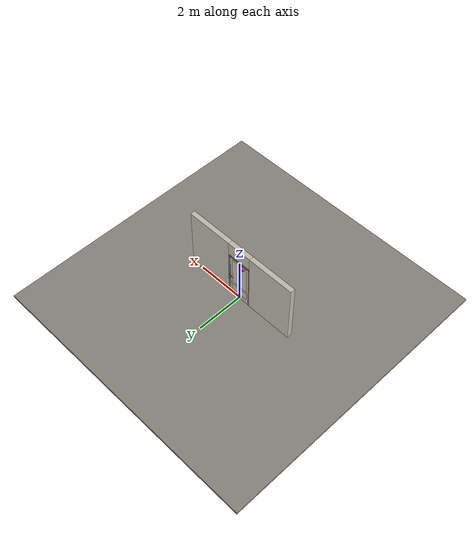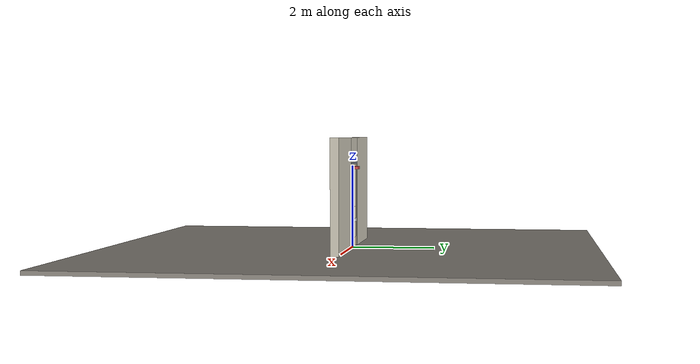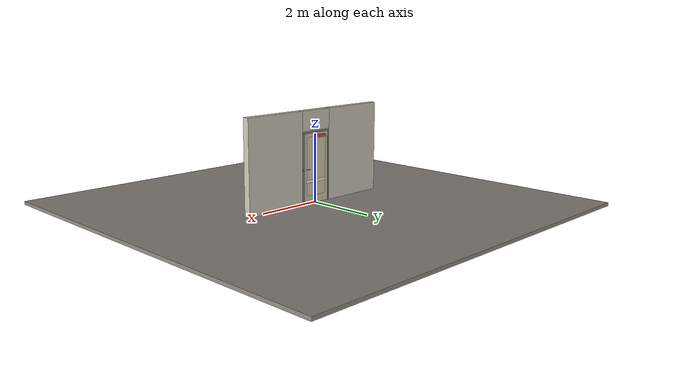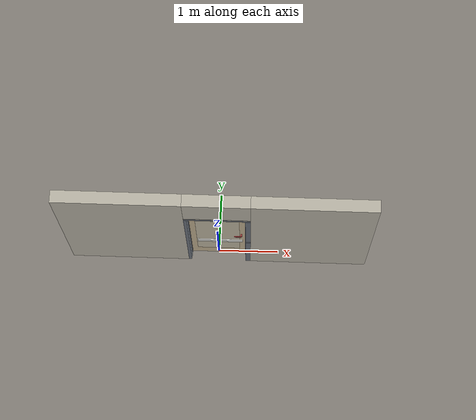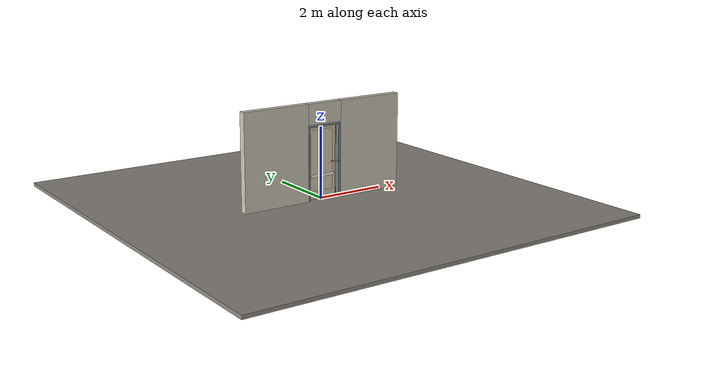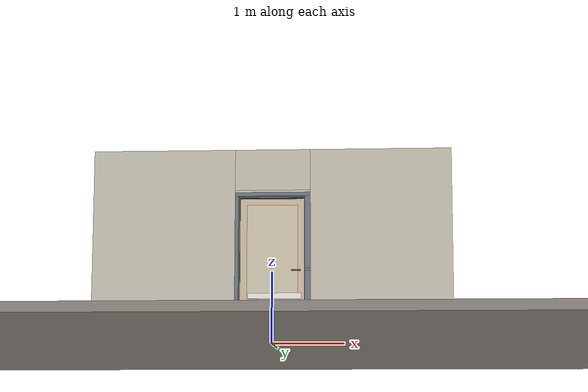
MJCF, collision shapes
<?xml version="1.0" ?>
<mujoco model="db0386_swing_single_simple">
  <compiler angle="radian" meshdir="../../hardware" texturedir="../../textures" autolimits="true" inertiafromgeom="false"/>
  <option timestep="0.002" integrator="implicitfast" cone="elliptic" impratio="10" noslip_iterations="3">
    <flag multiccd="enable"/>
  </option>
  <size memory="16M"/>
  <default>
    <geom condim="4" solref="0.005 1" solimp="0.95 0.99 0.001"/>
    <joint solreflimit="0.005 1" solimplimit="0.95 0.99 0.001"/>
    <tendon solreflimit="0.005 1"/>
    <equality solref="0.002 1"/>
  </default>
  <visual>
    <headlight ambient="0.4 0.4 0.4" diffuse="0.7 0.7 0.7" specular="0.2 0.2 0.2"/>
    <quality shadowsize="4096"/>
    <map znear="0.01" zfar="60"/>
  </visual>
  <asset>
    <mesh name="closer_body_fdc4667657" file="closer_body_fdc4667657.obj"/>
    <mesh name="hinge_e22b26c0c1" file="hinge_e22b26c0c1.obj"/>
    <mesh name="hinge_jamb_e1d088f8dc" file="hinge_jamb_e1d088f8dc.obj"/>
    <mesh name="lever_6268dcb28c" file="lever_6268dcb28c.obj"/>
    <material name="mat_floor" rgba="0.55 0.53 0.5 1" specular="0.2" shininess="0.15" reflectance="0"/>
    <material name="mat_wall" rgba="0.78 0.76 0.7 1" specular="0.2" shininess="0.1" reflectance="0"/>
    <material name="mat_leaf" rgba="0.82 0.75 0.62 1" specular="0.2" shininess="0.5" reflectance="0"/>
    <material name="mat_glass" rgba="0.85 0.92 0.95 0.25" specular="0.2" shininess="0.95" reflectance="0.1"/>
    <material name="mat_hinge" rgba="0.65 0.66 0.68 1" specular="0.74" shininess="0.5" reflectance="0.36"/>
    <material name="mat_op_stainless" rgba="0.75 0.76 0.77 1" specular="0.8" shininess="0.65" reflectance="0.4"/>
    <material name="mat_trim" rgba="0.85 0.66 0.3 1" specular="0.8" shininess="0.75" reflectance="0.4"/>
    <material name="mat_bolt" rgba="0.75 0.76 0.77 1" specular="0.8" shininess="0.65" reflectance="0.4"/>
    <material name="mat_frame" rgba="0.45 0.48 0.52 1" specular="0.32" shininess="0.6" reflectance="0.08"/>
    <material name="mat_seal" rgba="0.1 0.1 0.1 1" specular="0.2" shininess="0.1" reflectance="0"/>
    <material name="mat_closer" rgba="0.22 0.17 0.13 1" specular="0.8" shininess="0.6" reflectance="0.4"/>
    <material name="mat_bumper" rgba="0.92 0.92 0.9 1" specular="0.2" shininess="0.6" reflectance="0"/>
    <texture name="skybox" type="skybox" builtin="gradient" rgb1="0.6 0.7 0.85" rgb2="0.9 0.92 0.95" width="256" height="256"/>
  </asset>
  <worldbody>
    <light name="sun" pos="1.5 -2.5 4" dir="-0.3 0.5 -0.8" directional="true" diffuse="0.8 0.8 0.8" specular="0.3 0.3 0.3" castshadow="true"/>
    <light name="fill" pos="-1.5 2.5 3" dir="0.3 -0.5 -0.7" directional="true" diffuse="0.35 0.35 0.4" castshadow="false"/>
    <camera name="robot_view" pos="0 -2.613187 1.734312" xyaxes="1 0 0 0 0.26963 0.962964" fovy="52"/>
    <camera name="far_view" pos="0 2.471187 1.734312" xyaxes="-1 0 0 0 -0.26963 0.962964" fovy="52"/>
    <camera name="iso" pos="1.932062 -2.206438 2.141063" xyaxes="0.741536 0.670913 0 -0.242917 0.268487 0.932151" fovy="46"/>
    <camera name="detail_handle" pos="0.4705 -0.877 1.296" xyaxes="0.97561 0.219512 0 -0.070934 0.315262 0.94635" fovy="38"/>
    <geom name="floor" type="box" size="6 6 0.05" pos="0 0 -0.05" material="mat_floor" group="0" contype="1" conaffinity="1" friction="0.8 0.005 0.0001" density="2400"/>
    <geom name="wall_left" type="box" size="0.99475 0.1 1.35" pos="-1.50525 -0.071 1.35" material="mat_wall" group="0" contype="1" conaffinity="1" friction="0.6 0.005 0.0001" density="800"/>
    <geom name="wall_right" type="box" size="0.97975 0.1 1.35" pos="1.52025 -0.071 1.35" material="mat_wall" group="0" contype="1" conaffinity="1" friction="0.6 0.005 0.0001" density="800"/>
    <geom name="wall_header" type="box" size="0.5255 0.1 0.2875" pos="0.015 -0.071 2.4125" material="mat_wall" group="0" contype="1" conaffinity="1" friction="0.6 0.005 0.0001" density="800"/>
    <geom name="hinge_0_jamb" type="mesh" mesh="hinge_jamb_e1d088f8dc" pos="-0.4575 0.029 0.259" quat="0 1 0 0" material="mat_hinge" group="1" contype="0" conaffinity="0" density="7850"/>
    <geom name="hinge_1_jamb" type="mesh" mesh="hinge_jamb_e1d088f8dc" pos="-0.4575 0.029 1.025" quat="0 1 0 0" material="mat_hinge" group="1" contype="0" conaffinity="0" density="7850"/>
    <geom name="hinge_2_jamb" type="mesh" mesh="hinge_jamb_e1d088f8dc" pos="-0.4575 0.029 1.861" quat="0 1 0 0" material="mat_hinge" group="1" contype="0" conaffinity="0" density="7850"/>
    <geom name="jamb_hinge" type="box" size="0.025 0.1 1.0225" pos="-0.4855 -0.071 1.0225" material="mat_frame" group="0" contype="1" conaffinity="1" friction="0.6 0.005 0.0001" density="300"/>
    <geom name="strike_1016_wall_n" type="box" size="0.04 0.08075 0.018" pos="0.5005 -0.09025 1.016" material="mat_frame" group="0" contype="1" conaffinity="1" friction="0.6 0.005 0.0001" density="300"/>
    <geom name="strike_1016_wall_p" type="box" size="0.04 0.008 0.018" pos="0.5005 0.0175 1.016" material="mat_frame" group="0" contype="1" conaffinity="1" friction="0.6 0.005 0.0001" density="300"/>
    <geom name="strike_1016_ramp" type="box" size="0.04 0.018028 0.018" pos="0.503782 0.018312 1.016" quat="0.957092 0 0 -0.289784" material="mat_frame" group="0" contype="1" conaffinity="1" friction="0.12 0.005 0.0001" density="300"/>
    <geom name="strike_1016_back" type="box" size="0.0285 0.0095 0.018" pos="0.512 0 1.016" material="mat_frame" group="0" contype="1" conaffinity="1" friction="0.6 0.005 0.0001" density="300"/>
    <geom name="jamb_strike_0" type="box" size="0.04 0.1 0.499" pos="0.5005 -0.071 0.499" material="mat_frame" group="0" contype="1" conaffinity="1" friction="0.6 0.005 0.0001" density="300"/>
    <geom name="jamb_strike_1" type="box" size="0.04 0.1 0.5055" pos="0.5005 -0.071 1.5395" material="mat_frame" group="0" contype="1" conaffinity="1" friction="0.6 0.005 0.0001" density="300"/>
    <geom name="jamb_head" type="box" size="0.5255 0.1 0.025" pos="0.015 -0.071 2.07" material="mat_frame" group="0" contype="1" conaffinity="1" friction="0.6 0.005 0.0001" density="300"/>
    <geom name="head_stud" type="box" size="0.5255 0.1 0.015" pos="0.015 -0.071 2.11" material="mat_wall" group="0" contype="1" conaffinity="1" friction="0.6 0.005 0.0001" density="500"/>
    <geom name="stop_hinge" type="box" size="0.0055 0.016 1.0225" pos="-0.455 -0.0385 1.0225" material="mat_frame" group="0" contype="1" conaffinity="1" friction="0.6 0.005 0.0001" density="300"/>
    <geom name="stop_strike" type="box" size="0.0055 0.016 1.0225" pos="0.455 -0.0385 1.0225" material="mat_frame" group="0" contype="1" conaffinity="1" friction="0.6 0.005 0.0001" density="300"/>
    <geom name="stop_head" type="box" size="0.4605 0.016 0.0055" pos="0 -0.0385 2.0395" material="mat_frame" group="0" contype="1" conaffinity="1" friction="0.6 0.005 0.0001" density="300"/>
    <geom name="seal_hinge" type="box" size="0.004 0.002 1.0225" pos="-0.4575 -0.024 1.0225" material="mat_seal" group="1" contype="0" conaffinity="0" density="1100"/>
    <geom name="seal_strike" type="box" size="0.004 0.002 1.0225" pos="0.4575 -0.024 1.0225" material="mat_seal" group="1" contype="0" conaffinity="0" density="1100"/>
    <geom name="seal_head" type="box" size="0.4405 0.002 0.008" pos="0 -0.024 2.033" material="mat_seal" group="1" contype="0" conaffinity="0" density="1100"/>
    <site name="approach_point" pos="0 -1.5 0" quat="1 0 0 0" size="0.05" rgba="0.2 0.9 0.2 0.5" group="4"/>
    <site name="goal_point" pos="0 1.5 0" quat="1 0 0 0" size="0.05" rgba="0.2 0.9 0.2 0.5" group="4"/>
    <site name="door_plane_center" pos="0 0 1.0225" quat="1 0 0 0" size="0.02" rgba="0.2 0.9 0.2 0.5" group="4"/>
    <body name="leaf" pos="-0.4605 0 0">
      <inertial pos="0.390233 0.029019 1.366249" mass="43.537443" quat="-0.458623 0.490618 0.527344 0.52045" diaginertia="2.112221342 18.431866581 20.454677404"/>
      <joint name="leaf_hinge" type="hinge" axis="0 0 1" pos="0.003 0.029 0" limited="true" range="0 1.570796" solreflimit="0.02 1" damping="12.25611" frictionloss="0.599015" stiffness="10.536057" springref="-2.220945" armature="0.02"/>
      <geom name="leaf_slab" type="box" size="0.457 0.022 1.016" pos="0.46 0 1.025" material="mat_leaf" group="0" contype="1" conaffinity="1" friction="0.4 0.005 0.0001" density="1"/>
      <geom name="leaf_glass_0" type="box" size="0.35646 0.0228 0.85344" pos="0.46 0 1.08596" material="mat_glass" group="1" contype="0" conaffinity="0" density="1"/>
      <geom name="hinge_0" type="mesh" mesh="hinge_e22b26c0c1" pos="0.003 0.029 0.259" quat="0 1 0 0" material="mat_hinge" group="1" contype="0" conaffinity="0" density="7850"/>
      <geom name="hinge_1" type="mesh" mesh="hinge_e22b26c0c1" pos="0.003 0.029 1.025" quat="0 1 0 0" material="mat_hinge" group="1" contype="0" conaffinity="0" density="7850"/>
      <geom name="hinge_2" type="mesh" mesh="hinge_e22b26c0c1" pos="0.003 0.029 1.861" quat="0 1 0 0" material="mat_hinge" group="1" contype="0" conaffinity="0" density="7850"/>
      <geom name="leaf_latch_bolt_faceplate" type="box" size="0.0006 0.014 0.028" pos="0.9164 0 1.016" material="mat_bolt" group="1" contype="0" conaffinity="0" density="8500"/>
      <geom name="closer_body" type="mesh" mesh="closer_body_fdc4667657" pos="0.3 0.022 1.952" quat="-0.707107 0.707107 0 0" material="mat_closer" group="1" contype="0" conaffinity="0" density="2000"/>
      <geom name="closer_body_col" type="box" size="0.145 0.05 0.035" pos="0.3 0.072 1.952" material="mat_closer" group="3" contype="1" conaffinity="1" rgba="0.8 0.3 0.3 0.25" friction="0.6 0.005 0.0001" density="2000"/>
      <geom name="bumper_rail_n" type="box" size="0.372 0.01 0.04" pos="0.495 -0.032 0.659" material="mat_bumper" group="0" contype="1" conaffinity="1" friction="0.6 0.005 0.0001" density="1200"/>
      <geom name="bumper_rail_p" type="box" size="0.372 0.01 0.04" pos="0.495 0.032 0.659" material="mat_bumper" group="0" contype="1" conaffinity="1" friction="0.6 0.005 0.0001" density="1200"/>
      <site name="leaf_edge_mid" pos="0.917 0 1.016" quat="1 0 0 0" size="0.02" rgba="0.2 0.9 0.2 0.5" group="4"/>
      <body name="leaf_handle" pos="0.847 0 1.016">
        <inertial pos="-0.03705 0 0" mass="0.984967" quat="0 0.707107 0.707107 0" diaginertia="0.002278035 0.00380889 0.005520856"/>
        <joint name="leaf_handle_hinge" type="hinge" axis="0 -1 0" limited="true" range="0 0.96" damping="0.255791" frictionloss="0.05" stiffness="1.2" springref="-0.583333" armature="0.01"/>
        <geom name="leaf_handle_lever_n" type="mesh" mesh="lever_6268dcb28c" pos="0 -0.022 0" quat="0.707107 0.707107 0 0" material="mat_op_stainless" group="1" contype="0" conaffinity="0" density="3000"/>
        <geom name="leaf_handle_lever_col_n" type="capsule" size="0.0095 0.0505" pos="-0.06 -0.077 0" quat="0.707107 0 -0.707107 0" material="mat_op_stainless" group="3" contype="1" conaffinity="1" rgba="0.8 0.3 0.3 0.25" friction="0.7 0.01 0.0001" density="3000"/>
        <geom name="leaf_handle_hub_col_n" type="cylinder" size="0.012 0.022" pos="0 -0.052 0" quat="0.707107 -0.707107 0 0" material="mat_op_stainless" group="3" contype="1" conaffinity="1" rgba="0.8 0.3 0.3 0.25" friction="0.6 0.005 0.0001" density="3000"/>
        <geom name="leaf_handle_lever_p" type="mesh" mesh="lever_6268dcb28c" pos="0 0.022 0" quat="-0.707107 0.707107 0 0" material="mat_op_stainless" group="1" contype="0" conaffinity="0" density="3000"/>
        <geom name="leaf_handle_lever_col_p" type="capsule" size="0.0095 0.0505" pos="-0.06 0.077 0" quat="0.707107 0 -0.707107 0" material="mat_op_stainless" group="3" contype="1" conaffinity="1" rgba="0.8 0.3 0.3 0.25" friction="0.7 0.01 0.0001" density="3000"/>
        <geom name="leaf_handle_hub_col_p" type="cylinder" size="0.012 0.022" pos="0 0.052 0" quat="0.707107 -0.707107 0 0" material="mat_op_stainless" group="3" contype="1" conaffinity="1" rgba="0.8 0.3 0.3 0.25" friction="0.6 0.005 0.0001" density="3000"/>
        <site name="leaf_handle_grip_n" pos="-0.096 -0.077 0" quat="1 0 0 0" size="0.012" rgba="0.2 0.9 0.2 0.5" group="4"/>
        <site name="leaf_handle_grip_p" pos="-0.096 0.077 0" quat="1 0 0 0" size="0.012" rgba="0.2 0.9 0.2 0.5" group="4"/>
      </body>
      <body name="leaf_latch_bolt" pos="0.917 0 1.016">
        <inertial pos="-0.0055 0 0" mass="0.074627" quat="0.92388 -0.382683 0 0" diaginertia="0.000002271 0.000013255 0.000013255"/>
        <joint name="leaf_latch_bolt_slide" type="slide" axis="-1 0 0" limited="true" range="0 0.019" damping="2" frictionloss="0.3" stiffness="550" springref="-0.01" armature="0.1"/>
        <geom name="leaf_latch_bolt_capsule" type="capsule" size="0.008 0.0165" pos="-0.0055 0 0" quat="0.707107 0 0.707107 0" material="mat_bolt" group="0" contype="1" conaffinity="1" friction="0.2 0.005 0.0001" density="8500"/>
      </body>
    </body>
  </worldbody>
  <tendon>
    <fixed name="leaf_latch_bolt_coupling" limited="true" range="0 10">
      <joint joint="leaf_latch_bolt_slide" coef="1"/>
      <joint joint="leaf_handle_hinge" coef="-0.020879"/>
    </fixed>
  </tendon>
  <sensor>
    <jointpos name="leaf_hinge_pos" joint="leaf_hinge"/>
    <jointvel name="leaf_hinge_vel" joint="leaf_hinge"/>
    <jointpos name="leaf_handle_hinge_pos" joint="leaf_handle_hinge"/>
    <jointvel name="leaf_handle_hinge_vel" joint="leaf_handle_hinge"/>
    <jointpos name="leaf_latch_bolt_slide_pos" joint="leaf_latch_bolt_slide"/>
    <jointvel name="leaf_latch_bolt_slide_vel" joint="leaf_latch_bolt_slide"/>
  </sensor>
</mujoco>
